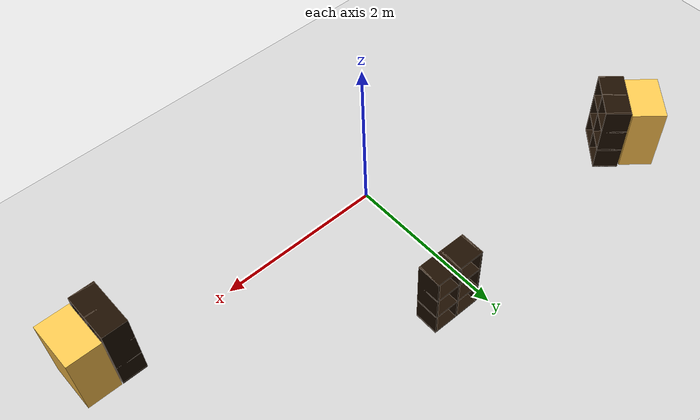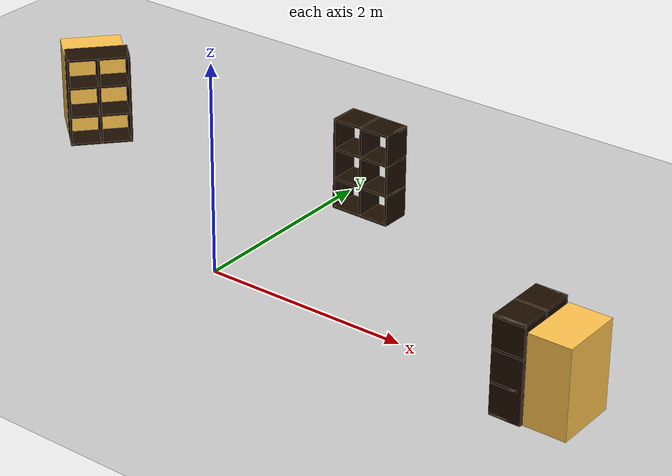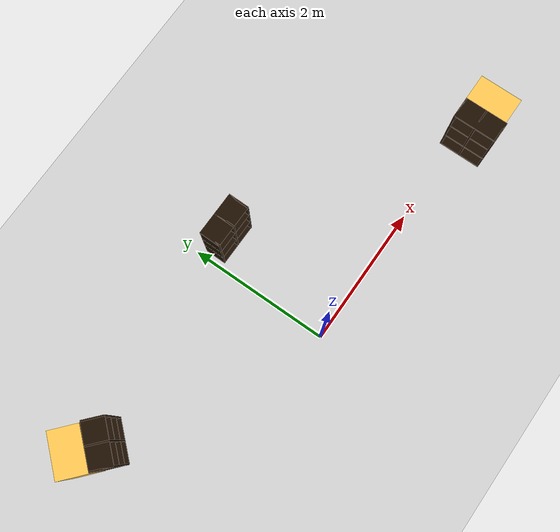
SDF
<sdf version="1.4">
 <world name="default">
  <include><uri>model://sun</uri></include>
  <include><uri>model://ground_plane</uri></include>
  <include><pose>0.392889 1.759657 0 0 0 -0.011248</pose><uri>model://6_Cube_StorageE</uri></include>
  <include>
   <pose>3.328587 -0.132918 0 0 0 -1.569936</pose>
   <name>6_Cube_StorageE_0</name>
   <uri>model://6_Cube_StorageE</uri>
  </include>
  <include>
   <pose>-2.640213 1.391053 0 0 0 -2.302382</pose>
   <name>6_Cube_StorageE_1</name>
   <uri>model://6_Cube_StorageE</uri>
  </include>
  <include>
   <pose>3.885770 -0.121705 0.430941 3.141593 -1.569863 3.141593</pose>
   <name>Box_33x15_0</name>
   <uri>model://Box_33x15</uri>
  </include>
  <include>
   <pose>-2.775149 1.493163 0.430941 2.419025 -1.569863 -3.141313</pose>
   <name>Box_33x15_1</name>
   <uri>model://Box_33x15</uri>
  </include>
 </world>
</sdf>

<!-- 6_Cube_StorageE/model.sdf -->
<sdf version='1.6'>
  <model name='6_Cube_StorageE'>

    <link name='Wall_0'>
    <pose frame=''>0 0 0.01 0 -0 0</pose>
	<inertial>
	  <mass>1.6201</mass>
	   <inertia>
	     <ixx>0.0119</ixx>
	     <iyy>0.0631</iyy>
	     <izz>0.0513</izz>
    	     <ixy>0</ixy>
	     <ixz>0</ixz>
	     <iyz>0</iyz>
	   </inertia>
	</inertial>
      <collision name='Wall_0_Collision'>
        <geometry>
          <box>
            <size>0.616 0.296 0.02</size>
          </box>
        </geometry>
      </collision>
      <visual name='Wall_0_Visual'>
        <geometry>
          <box>
            <size>0.616 0.296 0.02</size>
          </box>
        </geometry>
        <material>
          <script>
            <uri>file://media/materials/scripts/gazebo.material</uri>
            <name>Gazebo/Grey</name>
          </script>
          <ambient>0.105882 0.0509804 0 1</ambient>
        </material>
      </visual>
   </link>

     <joint type="fixed" name="0_2">
      <pose frame=''>-0.308 0 0 0 0 0</pose>
         <parent>Wall_2</parent>
  	 <child>Wall_0</child>
	 <axis>
	   <xyz>1 0 0</xyz>
	 </axis>
       </joint>

  <joint type="fixed" name="0_12">
      <pose frame=''>0 0 0 0 0 0</pose>
         <parent>Wall_12</parent>
  	 <child>Wall_0</child>
	 <axis>
	   <xyz>0 0 1</xyz>
	 </axis>
       </joint>

  <joint type="fixed" name="0_4">
      <pose frame=''>0.308 0 0 0 0 0</pose>
         <parent>Wall_4</parent>
  	 <child>Wall_0</child>
	 <axis>
	   <xyz>1 0 0</xyz>
	 </axis>
       </joint>

    <link name='Wall_10'>
      <pose frame=''>0 0 0.610 0 0 0</pose>
	<inertial>
	  <mass>1.6201</mass>
	   <inertia>
	     <ixx>0.0119</ixx>
	     <iyy>0.0631</iyy>
	     <izz>0.0513</izz>
    	     <ixy>0</ixy>
	     <ixz>0</ixz>
	     <iyz>0</iyz>
	   </inertia>
	</inertial>
      <collision name='Wall_10_Collision'>
        <geometry>
          <box>
            <size>0.616 0.296 0.02 </size>
          </box>
        </geometry>
      </collision>
      <visual name='Wall_10_Visual'>
          <geometry>
          <box>
            <size>0.616 0.296 0.02</size>
          </box>
        </geometry>
        <material>
          <script>
            <uri>file://media/materials/scripts/gazebo.material</uri>
            <name>Gazebo/Grey</name>
          </script>
          <ambient>0.105882 0.0509804 0 1</ambient>
        </material>
      </visual>
    </link>

     <joint type="fixed" name="10_2">
      <pose frame=''>-0.308 0 0 0 0 0</pose>
         <parent>Wall_2</parent>
  	 <child>Wall_10</child>
	 <axis>
	   <xyz>1 0 0</xyz>
	 </axis>
       </joint>

  <joint type="fixed" name="10_12">
      <pose frame=''>0 0 0 0 0 0</pose>
         <parent>Wall_12</parent>
  	 <child>Wall_10</child>
	 <axis>
	   <xyz>0 0 1</xyz>
	 </axis>
       </joint>

  <joint type="fixed" name="10_4">
      <pose frame=''>0.308 0 0 0 0 0</pose>
         <parent>Wall_4</parent>
  	 <child>Wall_10</child>
	 <axis>
	   <xyz>1 0 0</xyz>
	 </axis>
       </joint>

    <link name='Wall_12'>
  <pose frame=''>0 0 0.4575 0 0 0</pose>
	<inertial>
	  <mass>2.4065</mass>
	   <inertia>
	     <ixx>0.0177</ixx>
	     <iyy>0.1855</iyy>
	     <izz>0.1680</izz>
    	     <ixy>0</ixy>
	     <ixz>0</ixz>
	     <iyz>0</iyz>
	   </inertia>
	</inertial>
      <collision name='Wall_12_Collision'>
        <geometry>
          <box>
            <size>0.02 0.296 0.915</size>
          </box>
        </geometry>
      </collision>
      <visual name='Wall_12_Visual'>
         <geometry>
          <box>
            <size>0.02 0.296 0.915</size>
          </box>
        </geometry>
        <material>
          <script>
            <uri>file://media/materials/scripts/gazebo.material</uri>
            <name>Gazebo/Grey</name>
          </script>
          <ambient>0.105882 0.0509804 0 1</ambient>
        </material>
      </visual>
    </link>

    <link name='Wall_2'>
      <pose frame=''>-0.298 0 0.4575 0 0 0</pose>
	<inertial>
	  <mass>2.4065</mass>
	   <inertia>
	     <ixx>0.0177</ixx>
	     <iyy>0.1855</iyy>
	     <izz>0.1680</izz>
    	     <ixy>0</ixy>
	     <ixz>0</ixz>
	     <iyz>0</iyz>
	   </inertia>
	</inertial>
      <collision name='Wall_2_Collision'>
        <geometry>
          <box>
            <size>0.02 0.296 0.915</size>
          </box>
        </geometry>
      </collision>
      <visual name='Wall_2_Visual'>
        <geometry>
          <box>
            <size>0.02 0.296 0.915</size>
          </box>
        </geometry>
        <material>
          <script>
            <uri>file://media/materials/scripts/gazebo.material</uri>
            <name>Gazebo/Grey</name>
          </script>
          <ambient>0.105882 0.0509804 0 1</ambient>
        </material>
      </visual>
    </link>

    <link name='Wall_4'>
      <pose frame=''>0.298 0 0.4575 0 0 0</pose>
	<inertial>
	  <mass>2.4065</mass>
	   <inertia>
	     <ixx>0.0177</ixx>
	     <iyy>0.1855</iyy>
	     <izz>0.1680</izz>
    	     <ixy>0</ixy>
	     <ixz>0</ixz>
	     <iyz>0</iyz>
	   </inertia>
	</inertial>
      <collision name='Wall_4_Collision'>
        <geometry>
          <box>
            <size>0.02 0.296 0.915</size>
          </box>
        </geometry>
      </collision>
      <visual name='Wall_4_Visual'>
        <geometry>
          <box>
            <size>0.02 0.296 0.915</size>
          </box>
        </geometry>
        <material>
          <script>
            <uri>file://media/materials/scripts/gazebo.material</uri>
            <name>Gazebo/Grey</name>
          </script>
          <ambient>0.105882 0.0509804 0 1</ambient>
        </material>
      </visual>
    </link>

    <link name='Wall_6'>
     <pose frame=''>0 0 0.905 0 0 0</pose>
	<inertial>
	  <mass>1.6201</mass>
	   <inertia>
	     <ixx>0.0119</ixx>
	     <iyy>0.0631</iyy>
	     <izz>0.0513</izz>
    	     <ixy>0</ixy>
	     <ixz>0</ixz>
	     <iyz>0</iyz>
	   </inertia>
	</inertial>
      <collision name='Wall_6_Collision'>
        <geometry>
          <box>
            <size>0.616 0.296 0.02</size>
          </box>
        </geometry>
       </collision>
      <visual name='Wall_6_Visual'>
        <geometry>
          <box>
            <size>0.616 0.296 0.02</size>
          </box>
        </geometry>
        <material>
          <script>
            <uri>file://media/materials/scripts/gazebo.material</uri>
            <name>Gazebo/Grey</name>
          </script>
          <ambient>0.105882 0.0509804 0 1</ambient>
        </material>
      </visual>
     </link>

     <joint type="fixed" name="6_2">
      <pose frame=''>-0.308 0 0 0 0 0</pose>
         <parent>Wall_2</parent>
  	 <child>Wall_6</child>
	 <axis>
	   <xyz>2 0 0</xyz>
	 </axis>
       </joint>

  <joint type="fixed" name="6_12">
      <pose frame=''>0 0 0 0 0 0</pose>
         <parent>Wall_12</parent>
  	 <child>Wall_6</child>
	 <axis>
	   <xyz>0 0 1</xyz>
	 </axis>
       </joint>

  <joint type="fixed" name="6_4">
      <pose frame=''>0.308 0 0 0 0 0</pose>
         <parent>Wall_4</parent>
  	 <child>Wall_6</child>
	 <axis>
	   <xyz>1 0 0</xyz>
	 </axis>
       </joint>

    <link name='Wall_8'>
    <pose frame=''>0 0 0.305 0 0 0</pose>
	<inertial>
	  <mass>1.6201</mass>
	   <inertia>
	     <ixx>0.0119</ixx>
	     <iyy>0.0631</iyy>
	     <izz>0.0513</izz>
    	     <ixy>0</ixy>
	     <ixz>0</ixz>
	     <iyz>0</iyz>
	   </inertia>
	</inertial>
      <collision name='Wall_8_Collision'>
        <geometry>
          <box>
            <size>0.616 0.296 0.02</size>
          </box>
        </geometry>
       </collision>
      <visual name='Wall_8_Visual'>
        <geometry>
          <box>
            <size>0.616 0.296 0.02</size>
          </box>
        </geometry>
        <material>
          <script>
            <uri>file://media/materials/scripts/gazebo.material</uri>
            <name>Gazebo/Grey</name>
          </script>
          <ambient>0.105882 0.0509804 0 1</ambient>
        </material>
      </visual>
      </link>

     <joint type="fixed" name="8_2">
      <pose frame=''>-0.308 0 0 0 0 0</pose>
         <parent>Wall_2</parent>
  	 <child>Wall_8</child>
	 <axis>
	   <xyz>1 0 0</xyz>
	 </axis>
       </joint>

  <joint type="fixed" name="8_12">
      <pose frame=''>0 0 0 0 0 0</pose>
         <parent>Wall_12</parent>
  	 <child>Wall_8</child>
	 <axis>
	   <xyz>0 0 1</xyz>
	 </axis>
       </joint>

  <joint type="fixed" name="8_4">
      <pose frame=''>0.308 0 0 0 0 0</pose>
         <parent>Wall_4</parent>
  	 <child>Wall_8</child>
	 <axis>
	   <xyz>1 0 0</xyz>
	 </axis>
       </joint>

    <static>1</static>
  </model>
</sdf>

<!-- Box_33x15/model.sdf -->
<sdf version='1.6'>
  <model name='Box_33x15'>
    <link name='Wall'>
    <pose frame=''>0 0 0.1985 0 0 0</pose>
	<inertial>
	  <mass>5</mass>
	   <inertia>
	     <ixx>0.2157</ixx>
	     <iyy>0.3597</iyy>
	     <izz>0.4440</izz>
    	     <ixy>0</ixy>
	     <ixz>0</ixz>
	     <iyz>0</iyz>
	   </inertia>
	</inertial>
      <collision name='Wall_Collision'>
        <geometry>
          <box>
            <size>0.84 0.6 0.397 </size>
          </box>
        </geometry>
       </collision>
      <visual name='Wall_Visual'>
       <geometry>
          <box>
            <size>0.84 0.6 0.397 </size>
          </box>
        </geometry>
        <material>
          <script>
            <uri>file://media/materials/scripts/gazebo.material</uri>
            <name>Gazebo/Grey</name>
          </script>
          <ambient>1 0.764706 0.305882 1</ambient>
        </material>
      </visual>
     </link>

    <static>1</static>
  </model>
</sdf>
